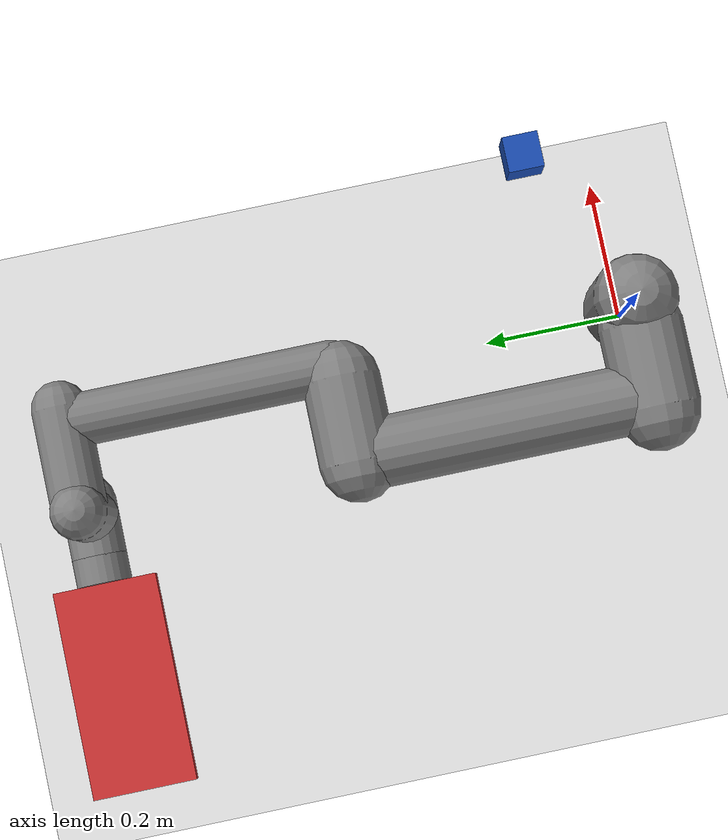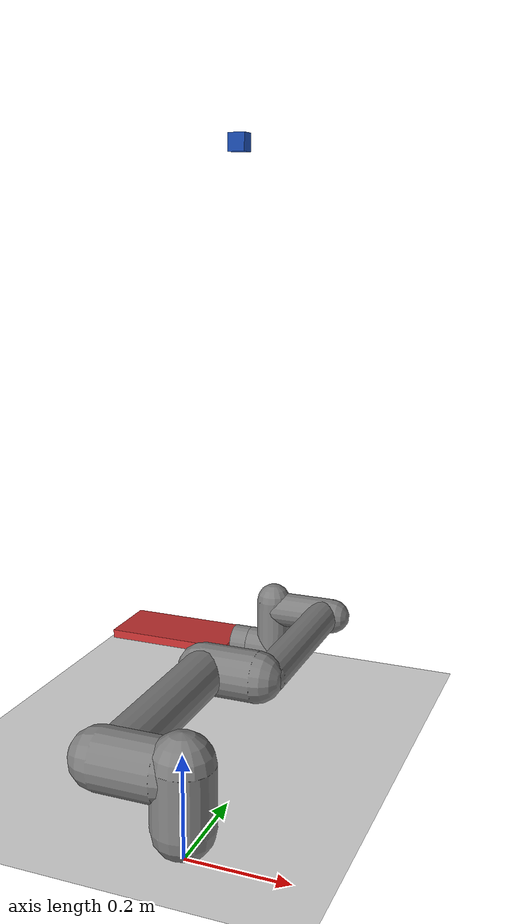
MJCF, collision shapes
<mujoco model="ur5e">
  <compiler angle="radian" meshdir="assets" autolimits="true"/>

  <option integrator="implicitfast" gravity="0 0 -9.81">
    <flag contact="enable"/>
  </option>

  <size nconmax="1000" njmax="1000"/>

  <default>
    <default class="ur5e">
      <material specular="0.5" shininess="0.25"/>
      <joint axis="0 1 0" range="-6.28319 6.28319" armature="0.1"/>
      <general gaintype="fixed" biastype="affine" ctrlrange="-6.2831 6.2831" gainprm="2000" biasprm="0 -2000 -400"
        forcerange="-150 150"/>
      <default class="size3">
        <default class="size3_limited">
          <joint range="-3.1415 3.1415"/>
          <general ctrlrange="-3.1415 3.1415"/>
        </default>
      </default>
      <default class="size1">
        <general gainprm="500" biasprm="0 -500 -100" forcerange="-28 28"/>
      </default>
      <default class="visual">
        <geom type="mesh" contype="0" conaffinity="0" group="2"/>
      </default>
      <default class="collision">
        <geom type="capsule" group="3"/>
        <default class="eef_collision">
          <geom type="cylinder"/>
        </default>
      </default>
      <site size="0.001" rgba="0.5 0.5 0.5 0.3" group="4"/>
    </default>
  </default>

  <asset>
    <material class="ur5e" name="black" rgba="0.033 0.033 0.033 1"/>
    <material class="ur5e" name="jointgray" rgba="0.278 0.278 0.278 1"/>
    <material class="ur5e" name="linkgray" rgba="0.82 0.82 0.82 1"/>
    <material class="ur5e" name="urblue" rgba="0.49 0.678 0.8 1"/>
    <material name="floor_mat" rgba="0.9 0.9 0.9 1" specular="0.1" shininess="0.1"/>
    <material name="cube_mat" rgba="0.1 0.3 0.7 1" specular="0.5" shininess="0.3"/>

    <mesh file="base_0.obj"/>
    <mesh file="base_1.obj"/>
    <mesh file="shoulder_0.obj"/>
    <mesh file="shoulder_1.obj"/>
    <mesh file="shoulder_2.obj"/>
    <mesh file="upperarm_0.obj"/>
    <mesh file="upperarm_1.obj"/>
    <mesh file="upperarm_2.obj"/>
    <mesh file="upperarm_3.obj"/>
    <mesh file="forearm_0.obj"/>
    <mesh file="forearm_1.obj"/>
    <mesh file="forearm_2.obj"/>
    <mesh file="forearm_3.obj"/>
    <mesh file="wrist1_0.obj"/>
    <mesh file="wrist1_1.obj"/>
    <mesh file="wrist1_2.obj"/>
    <mesh file="wrist2_0.obj"/>
    <mesh file="wrist2_1.obj"/>
    <mesh file="wrist2_2.obj"/>
    <mesh file="wrist3.obj"/>
  </asset>

  <contact>
    <pair geom1="sliding_cube" geom2="panel" friction="0.1 0.005 0.001"/>
  </contact>

  <worldbody>
    <!-- Add floor -->
    <geom name="floor" type="plane" size="2 2 0.1" material="floor_mat" condim="3"/>

    <light name="spotlight" mode="targetbodycom" target="wrist_2_link" pos="0 -1 2"/>
    <light name="ambient" pos="0 0 3" dir="0 0 -1" directional="true"/>

    <body name="base" pos="0 0 0" quat="1 0 0 1" childclass="ur5e">
      <inertial mass="4.0" pos="0 0 0" diaginertia="0.00443333156 0.00443333156 0.0072"/>
      <geom mesh="base_0" material="black" class="visual"/>
      <geom mesh="base_1" material="jointgray" class="visual"/>
      <body name="shoulder_link" pos="0 0 0.163">
        <inertial mass="3.7" pos="0 0 0" diaginertia="0.0102675 0.0102675 0.00666"/>
        <joint name="shoulder_pan_joint" class="size3" axis="0 0 1"/>
        <geom mesh="shoulder_0" material="urblue" class="visual"/>
        <geom mesh="shoulder_1" material="black" class="visual"/>
        <geom mesh="shoulder_2" material="jointgray" class="visual"/>
        <geom class="collision" size="0.06 0.06" pos="0 0 -0.04"/>
        <body name="upper_arm_link" pos="0 0.138 0" quat="1 0 1 0">
          <inertial mass="8.393" pos="0 0 0.2125" diaginertia="0.133886 0.133886 0.0151074"/>
          <joint name="shoulder_lift_joint" class="size3"/>
          <geom mesh="upperarm_0" material="linkgray" class="visual"/>
          <geom mesh="upperarm_1" material="black" class="visual"/>
          <geom mesh="upperarm_2" material="jointgray" class="visual"/>
          <geom mesh="upperarm_3" material="urblue" class="visual"/>
          <geom class="collision" pos="0 -0.04 0" quat="1 1 0 0" size="0.06 0.06"/>
          <geom class="collision" size="0.05 0.2" pos="0 0 0.2"/>
          <body name="forearm_link" pos="0 -0.131 0.425">
            <inertial mass="2.275" pos="0 0 0.196" diaginertia="0.0311796 0.0311796 0.004095"/>
            <joint name="elbow_joint" class="size3_limited"/>
            <geom mesh="forearm_0" material="urblue" class="visual"/>
            <geom mesh="forearm_1" material="linkgray" class="visual"/>
            <geom mesh="forearm_2" material="black" class="visual"/>
            <geom mesh="forearm_3" material="jointgray" class="visual"/>
            <geom class="collision" pos="0 0.08 0" quat="1 1 0 0" size="0.055 0.06"/>
            <geom class="collision" size="0.038 0.19" pos="0 0 0.2"/>
            <body name="wrist_1_link" pos="0 0 0.392" quat="1 0 1 0">
              <inertial mass="1.219" pos="0 0.127 0" diaginertia="0.0025599 0.0025599 0.0021942"/>
              <joint name="wrist_1_joint" class="size1"/>
              <geom mesh="wrist1_0" material="black" class="visual"/>
              <geom mesh="wrist1_1" material="urblue" class="visual"/>
              <geom mesh="wrist1_2" material="jointgray" class="visual"/>
              <geom class="collision" pos="0 0.05 0" quat="1 1 0 0" size="0.04 0.07"/>
              <body name="wrist_2_link" pos="0 0.127 0">
                <inertial mass="1.219" pos="0 0 0.1" diaginertia="0.0025599 0.0025599 0.0021942"/>
                <joint name="wrist_2_joint" axis="0 0 1" class="size1"/>
                <geom mesh="wrist2_0" material="black" class="visual"/>
                <geom mesh="wrist2_1" material="urblue" class="visual"/>
                <geom mesh="wrist2_2" material="jointgray" class="visual"/>
                <geom class="collision" size="0.04 0.06" pos="0 0 0.04"/>
                <geom class="collision" pos="0 0.02 0.1" quat="1 1 0 0" size="0.04 0.04"/>
                <body name="wrist_3_link" pos="0 0 0.1">
                  <inertial mass="0.1889" pos="0 0.0771683 0" quat="1 0 0 1"
                    diaginertia="0.000132134 9.90863e-05 9.90863e-05"/>
                  <joint name="wrist_3_joint" class="size1"/>
                  <geom material="linkgray" mesh="wrist3" class="visual"/>
                  <geom class="eef_collision" pos="0 0.08 0" quat="1 1 0 0" size="0.04 0.02"/>
                  <site name="attachment_site" pos="0 0.1 0" quat="-1 1 0 0"/>
                  <body name="fixed_box" pos="0 0.25 0">
                    <!-- Modified panel with proper collision -->
                    <geom name="panel" type="box" size="0.075 0.15 0.01" rgba="0.8 0.2 0.2 1"
                          condim="3" friction="0.1 0.005 0.001"/>
                    <inertial mass="0.5" pos="0 0 0" quat="0 0 0 1" diaginertia="0.001 0.001 0.001"/>
                  </body>
                </body>
              </body>
            </body>
          </body>
        </body>
      </body>
    </body>

    <!-- Add sliding cube -->
    <body name="sliding_cube" pos="0 0.25 1.2">
      <joint type="free"/>
      <geom name="sliding_cube" type="box" size="0.015 0.015 0.015" material="cube_mat"
            mass="0.05" condim="3"/>
      <inertial pos="0 0 0" mass="0.05" diaginertia="0.0001 0.0001 0.0001"/>
    </body>
  </worldbody>

  <actuator>
    <general class="size3" name="shoulder_pan" joint="shoulder_pan_joint"/>
    <general class="size3" name="shoulder_lift" joint="shoulder_lift_joint"/>
    <general class="size3_limited" name="elbow" joint="elbow_joint"/>
    <general class="size1" name="wrist_1" joint="wrist_1_joint"/>
    <general class="size1" name="wrist_2" joint="wrist_2_joint"/>
    <general class="size1" name="wrist_3" joint="wrist_3_joint"/>
  </actuator>

  <keyframe>
    <key name="home" qpos="-1.5708 -1.5708 1.5708 0 0 0 0 0 0 0 0 0 0" ctrl="-1.5708 -1.5708 1.5708 0 0 0"/>
  </keyframe>
</mujoco>
